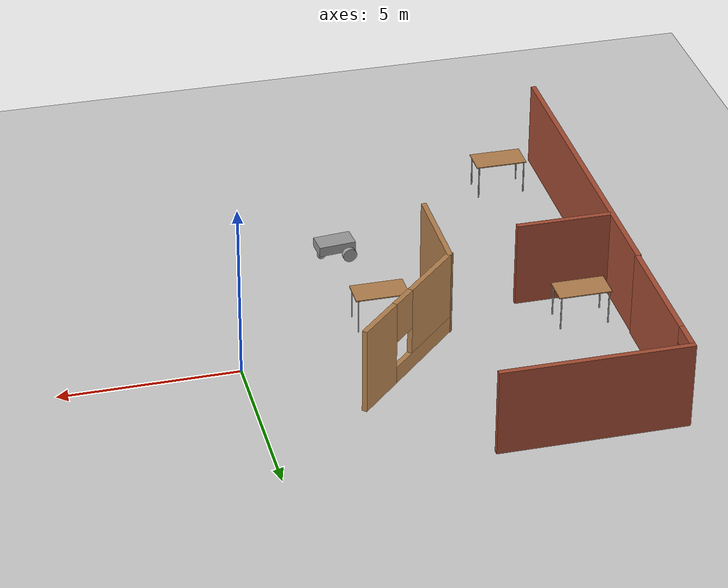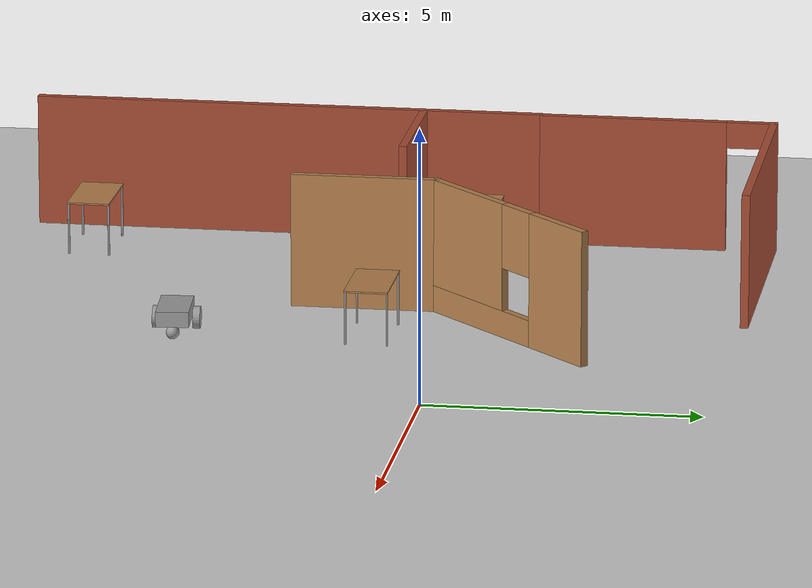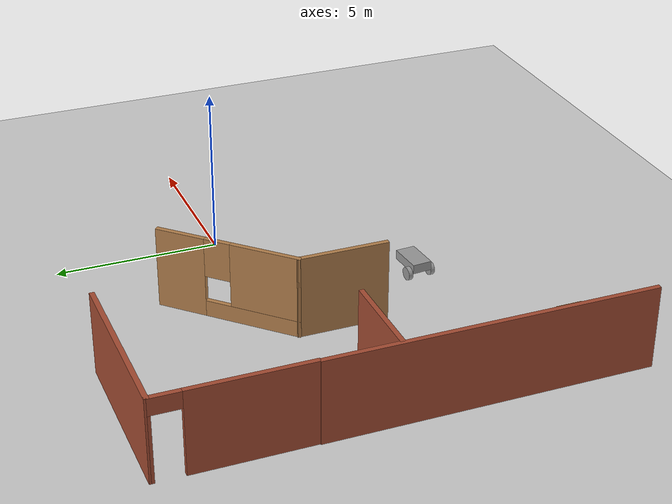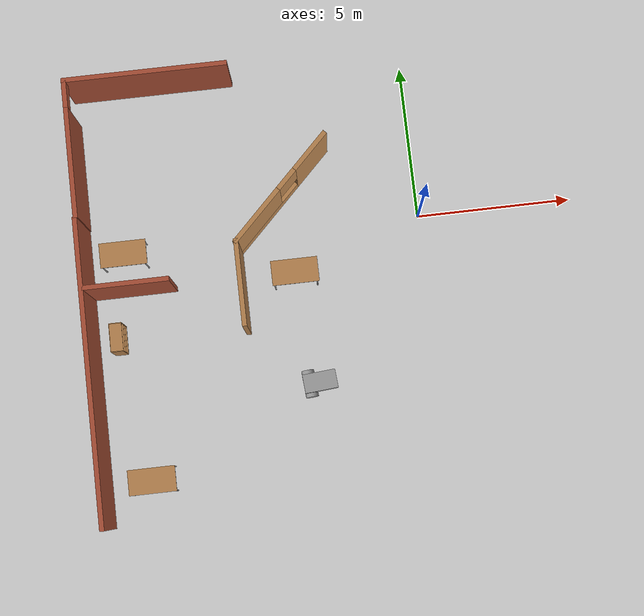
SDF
<sdf version="1.6">
 <world name="default">
  <model name="ground_plane">
   <static>1</static>
   <link name="link">
    <collision name="collision">
     <geometry><plane><normal>0 0 1</normal><size>100 100</size></plane></geometry>
     <surface>
      <contact><collide_bitmask>65535</collide_bitmask></contact>
      <friction><ode><mu>100</mu><mu2>50</mu2></ode></friction>
     </surface>
    </collision>
    <visual name="visual">
     <cast_shadows>0</cast_shadows>
     <geometry><plane><normal>0 0 1</normal><size>100 100</size></plane></geometry>
     <material>
      <script><uri>file://media/materials/scripts/gazebo.material</uri><name>Gazebo/Grey</name></script>
     </material>
    </visual>
   </link>
  </model>
  <model name="cart">
   <link name="link_0">
    <pose>0.000334 -0.065586 0.044669 0 -0 0</pose>
    <inertial>
     <mass>0.183478</mass>
     <inertia>
      <ixx>0.0186131</ixx>
      <ixy>0</ixy>
      <ixz>0</ixz>
      <iyy>0.00678768</iyy>
      <iyz>0</iyz>
      <izz>0.0228966</izz>
     </inertia>
    </inertial>
    <visual name="visual">
     <pose>0 0 0.2 0 -0 0</pose>
     <geometry><box><size>0.6017 1.06558 0.286166</size></box></geometry>
     <material>
      <lighting>1</lighting>
      <script><uri>file://media/materials/scripts/gazebo.material</uri><name>Gazebo/Grey</name></script>
      <shader type="pixel"><normal_map>__default__</normal_map></shader>
      <ambient>0.3 0.3 0.3 1</ambient>
      <diffuse>0.7 0.7 0.7 1</diffuse>
      <specular>0.01 0.01 0.01 1</specular>
      <emissive>0 0 0 1</emissive>
     </material>
    </visual>
    <collision name="collision">
     <pose>0 0 0.2 0 -0 0</pose>
     <geometry><box><size>0.6017 1.06558 0.286166</size></box></geometry>
     <surface>
      <friction>
       <ode><mu>1</mu><mu2>1</mu2><fdir1>0 0 0</fdir1><slip1>0</slip1><slip2>0</slip2></ode>
       <torsional>
        <coefficient>1</coefficient>
        <patch_radius>0</patch_radius>
        <surface_radius>0</surface_radius>
        <use_patch_radius>1</use_patch_radius>
        <ode><slip>0</slip></ode>
       </torsional>
      </friction>
      <bounce><restitution_coefficient>0</restitution_coefficient><threshold>1e+06</threshold></bounce>
      <contact>
       <collide_without_contact>0</collide_without_contact>
       <collide_without_contact_bitmask>1</collide_without_contact_bitmask>
       <collide_bitmask>1</collide_bitmask>
       <ode>
        <soft_cfm>0</soft_cfm>
        <soft_erp>0.2</soft_erp>
        <kp>1e+13</kp>
        <kd>1</kd>
        <max_vel>0.01</max_vel>
        <min_depth>0</min_depth>
       </ode>
       <bullet>
        <split_impulse>1</split_impulse>
        <split_impulse_penetration_threshold>-0.01</split_impulse_penetration_threshold>
        <soft_cfm>0</soft_cfm>
        <soft_erp>0.2</soft_erp>
        <kp>1e+13</kp>
        <kd>1</kd>
       </bullet>
      </contact>
     </surface>
    </collision>
   </link>
   <link name="link_1">
    <pose>-0.001 -0.462788 -0.129729 0 -0 0</pose>
    <inertial>
     <mass>1.886</mass>
     <inertia>
      <ixx>0.0115145</ixx>
      <ixy>0</ixy>
      <ixz>0</ixz>
      <iyy>0.0115145</iyy>
      <iyz>0</iyz>
      <izz>0.0115145</izz>
     </inertia>
     <pose>0 0 0.024704 0 -0 0</pose>
    </inertial>
    <visual name="visual">
     <pose>0 0 0.1 0 -0 0</pose>
     <geometry><sphere><radius>0.123544</radius></sphere></geometry>
     <material>
      <lighting>1</lighting>
      <script><uri>file://media/materials/scripts/gazebo.material</uri><name>Gazebo/Grey</name></script>
      <shader type="pixel"><normal_map>__default__</normal_map></shader>
      <ambient>0.3 0.3 0.3 1</ambient>
      <diffuse>0.7 0.7 0.7 1</diffuse>
      <specular>0.01 0.01 0.01 1</specular>
      <emissive>0 0 0 1</emissive>
     </material>
    </visual>
    <collision name="collision">
     <pose>0 0 0.1 0 -0 0</pose>
     <geometry><sphere><radius>0.123544</radius></sphere></geometry>
     <surface>
      <friction>
       <ode><mu>1</mu><mu2>1</mu2><fdir1>0 0 0</fdir1><slip1>0</slip1><slip2>0</slip2></ode>
       <torsional>
        <coefficient>1</coefficient>
        <patch_radius>0</patch_radius>
        <surface_radius>0</surface_radius>
        <use_patch_radius>1</use_patch_radius>
        <ode><slip>0</slip></ode>
       </torsional>
      </friction>
      <bounce><restitution_coefficient>0</restitution_coefficient><threshold>1e+06</threshold></bounce>
      <contact>
       <collide_without_contact>0</collide_without_contact>
       <collide_without_contact_bitmask>1</collide_without_contact_bitmask>
       <collide_bitmask>1</collide_bitmask>
       <ode>
        <soft_cfm>0</soft_cfm>
        <soft_erp>0.2</soft_erp>
        <kp>1e+13</kp>
        <kd>1</kd>
        <max_vel>0.01</max_vel>
        <min_depth>0</min_depth>
       </ode>
       <bullet>
        <split_impulse>1</split_impulse>
        <split_impulse_penetration_threshold>-0.01</split_impulse_penetration_threshold>
        <soft_cfm>0</soft_cfm>
        <soft_erp>0.2</soft_erp>
        <kp>1e+13</kp>
        <kd>1</kd>
       </bullet>
      </contact>
     </surface>
    </collision>
   </link>
   <link name="link_2">
    <pose>0.368986 0.26419 0.04253 3.14159 1.55999 3.14159</pose>
    <inertial>
     <mass>0.0216399</mass>
     <inertia>
      <ixx>0.000254029</ixx>
      <ixy>0</ixy>
      <ixz>0</ixz>
      <iyy>0.000254029</iyy>
      <iyz>0</iyz>
      <izz>0.000445951</izz>
     </inertia>
    </inertial>
    <visual name="visual">
     <geometry><cylinder><radius>0.203016</radius><length>0.131225</length></cylinder></geometry>
     <material>
      <lighting>1</lighting>
      <script><uri>file://media/materials/scripts/gazebo.material</uri><name>Gazebo/Grey</name></script>
      <shader type="pixel"><normal_map>__default__</normal_map></shader>
      <ambient>0.3 0.3 0.3 1</ambient>
      <diffuse>0.7 0.7 0.7 1</diffuse>
      <specular>0.01 0.01 0.01 1</specular>
      <emissive>0 0 0 1</emissive>
     </material>
    </visual>
    <collision name="collision">
     <geometry><cylinder><radius>0.203016</radius><length>0.131225</length></cylinder></geometry>
     <surface>
      <friction>
       <ode><mu>1</mu><mu2>1</mu2><fdir1>0 0 0</fdir1><slip1>0</slip1><slip2>0</slip2></ode>
       <torsional>
        <coefficient>1</coefficient>
        <patch_radius>0</patch_radius>
        <surface_radius>0</surface_radius>
        <use_patch_radius>1</use_patch_radius>
        <ode><slip>0</slip></ode>
       </torsional>
      </friction>
      <bounce><restitution_coefficient>0</restitution_coefficient><threshold>1e+06</threshold></bounce>
      <contact>
       <collide_without_contact>0</collide_without_contact>
       <collide_without_contact_bitmask>1</collide_without_contact_bitmask>
       <collide_bitmask>1</collide_bitmask>
       <ode>
        <soft_cfm>0</soft_cfm>
        <soft_erp>0.2</soft_erp>
        <kp>1e+13</kp>
        <kd>1</kd>
        <max_vel>0.01</max_vel>
        <min_depth>0</min_depth>
       </ode>
       <bullet>
        <split_impulse>1</split_impulse>
        <split_impulse_penetration_threshold>-0.01</split_impulse_penetration_threshold>
        <soft_cfm>0</soft_cfm>
        <soft_erp>0.2</soft_erp>
        <kp>1e+13</kp>
        <kd>1</kd>
       </bullet>
      </contact>
     </surface>
    </collision>
   </link>
   <link name="link_2_clone">
    <pose>-0.368319 0.26419 0.04253 3.14159 1.55999 3.14159</pose>
    <inertial>
     <mass>0.0216399</mass>
     <inertia>
      <ixx>0.000254029</ixx>
      <ixy>0</ixy>
      <ixz>0</ixz>
      <iyy>0.000254029</iyy>
      <iyz>0</iyz>
      <izz>0.000445951</izz>
     </inertia>
    </inertial>
    <visual name="visual">
     <geometry><cylinder><radius>0.203016</radius><length>0.131225</length></cylinder></geometry>
     <material>
      <lighting>1</lighting>
      <script><uri>file://media/materials/scripts/gazebo.material</uri><name>Gazebo/Grey</name></script>
      <shader type="pixel"><normal_map>__default__</normal_map></shader>
      <ambient>0.3 0.3 0.3 1</ambient>
      <diffuse>0.7 0.7 0.7 1</diffuse>
      <specular>0.01 0.01 0.01 1</specular>
      <emissive>0 0 0 1</emissive>
     </material>
    </visual>
    <collision name="collision">
     <geometry><cylinder><radius>0.203016</radius><length>0.131225</length></cylinder></geometry>
     <surface>
      <friction>
       <ode><mu>1</mu><mu2>1</mu2><fdir1>0 0 0</fdir1><slip1>0</slip1><slip2>0</slip2></ode>
       <torsional>
        <coefficient>1</coefficient>
        <patch_radius>0</patch_radius>
        <surface_radius>0</surface_radius>
        <use_patch_radius>1</use_patch_radius>
        <ode><slip>0</slip></ode>
       </torsional>
      </friction>
      <bounce><restitution_coefficient>0</restitution_coefficient><threshold>1e+06</threshold></bounce>
      <contact>
       <collide_without_contact>0</collide_without_contact>
       <collide_without_contact_bitmask>1</collide_without_contact_bitmask>
       <collide_bitmask>1</collide_bitmask>
       <ode>
        <soft_cfm>0</soft_cfm>
        <soft_erp>0.2</soft_erp>
        <kp>1e+13</kp>
        <kd>1</kd>
        <max_vel>0.01</max_vel>
        <min_depth>0</min_depth>
       </ode>
       <bullet>
        <split_impulse>1</split_impulse>
        <split_impulse_penetration_threshold>-0.01</split_impulse_penetration_threshold>
        <soft_cfm>0</soft_cfm>
        <soft_erp>0.2</soft_erp>
        <kp>1e+13</kp>
        <kd>1</kd>
       </bullet>
      </contact>
     </surface>
    </collision>
   </link>
   <joint name="link_0_JOINT_0" type="revolute">
    <parent>link_0</parent>
    <child>link_2</child>
    <axis>
     <xyz>0 0 1</xyz>
     <use_parent_model_frame>0</use_parent_model_frame>
     <limit>
      <lower>-1.79769e+308</lower>
      <upper>1.79769e+308</upper>
      <effort>-1</effort>
      <velocity>-1</velocity>
     </limit>
     <dynamics>
      <spring_reference>0</spring_reference>
      <spring_stiffness>0</spring_stiffness>
      <damping>0</damping>
     </dynamics>
    </axis>
    <physics>
     <ode><limit><cfm>0</cfm><erp>0.2</erp></limit><suspension><cfm>0</cfm><erp>0.2</erp></suspension></ode>
    </physics>
   </joint>
   <joint name="link_0_JOINT_1" type="revolute">
    <parent>link_0</parent>
    <child>link_2_clone</child>
    <axis>
     <xyz>0 0 1</xyz>
     <use_parent_model_frame>0</use_parent_model_frame>
     <limit>
      <lower>-1.79769e+308</lower>
      <upper>1.79769e+308</upper>
      <effort>-1</effort>
      <velocity>-1</velocity>
     </limit>
     <dynamics>
      <spring_reference>0</spring_reference>
      <spring_stiffness>0</spring_stiffness>
      <damping>0</damping>
     </dynamics>
    </axis>
    <physics>
     <ode><limit><cfm>0</cfm><erp>0.2</erp></limit><suspension><cfm>0</cfm><erp>0.2</erp></suspension></ode>
    </physics>
   </joint>
   <joint name="link_0_JOINT_2" type="ball">
    <parent>link_0</parent>
    <child>link_1</child>
    <physics>
     <ode><limit><cfm>0</cfm><erp>0.2</erp></limit><suspension><cfm>0</cfm><erp>0.2</erp></suspension></ode>
    </physics>
   </joint>
   <static>0</static>
   <pose>-3.83512 -5.04715 0.158309 0.010888 -2e-06 1.65228</pose>
  </model>
  <model name="bookshelf">
   <static>1</static>
   <link name="link">
    <inertial><mass>1</mass></inertial>
    <collision name="back">
     <pose>0 0.005 0.6 0 -0 0</pose>
     <geometry><box><size>0.9 0.01 1.2</size></box></geometry>
    </collision>
    <visual name="visual1">
     <pose>0 0.005 0.6 0 -0 0</pose>
     <geometry><box><size>0.9 0.01 1.2</size></box></geometry>
     <material>
      <script><uri>file://media/materials/scripts/gazebo.material</uri><name>Gazebo/Wood</name></script>
     </material>
    </visual>
    <collision name="left_side">
     <pose>0.45 -0.195 0.6 0 -0 0</pose>
     <geometry><box><size>0.02 0.4 1.2</size></box></geometry>
    </collision>
    <visual name="visual2">
     <pose>0.45 -0.195 0.6 0 -0 0</pose>
     <geometry><box><size>0.02 0.4 1.2</size></box></geometry>
     <material>
      <script><uri>file://media/materials/scripts/gazebo.material</uri><name>Gazebo/Wood</name></script>
     </material>
    </visual>
    <collision name="right_side">
     <pose>-0.45 -0.195 0.6 0 -0 0</pose>
     <geometry><box><size>0.02 0.4 1.2</size></box></geometry>
    </collision>
    <visual name="visual3">
     <pose>-0.45 -0.195 0.6 0 -0 0</pose>
     <geometry><box><size>0.02 0.4 1.2</size></box></geometry>
     <material>
      <script><uri>file://media/materials/scripts/gazebo.material</uri><name>Gazebo/Wood</name></script>
     </material>
    </visual>
    <collision name="bottom">
     <pose>0 -0.195 0.03 0 -0 0</pose>
     <geometry><box><size>0.88 0.4 0.06</size></box></geometry>
    </collision>
    <visual name="visual4">
     <pose>0 -0.195 0.03 0 -0 0</pose>
     <geometry><box><size>0.88 0.4 0.06</size></box></geometry>
     <material>
      <script><uri>file://media/materials/scripts/gazebo.material</uri><name>Gazebo/Wood</name></script>
     </material>
    </visual>
    <collision name="top">
     <pose>0 -0.195 1.19 0 -0 0</pose>
     <geometry><box><size>0.88 0.4 0.02</size></box></geometry>
    </collision>
    <visual name="visual5">
     <pose>0 -0.195 1.19 0 -0 0</pose>
     <geometry><box><size>0.88 0.4 0.02</size></box></geometry>
     <material>
      <script><uri>file://media/materials/scripts/gazebo.material</uri><name>Gazebo/Wood</name></script>
     </material>
    </visual>
    <collision name="low_shelf">
     <pose>0 -0.195 0.43 0 -0 0</pose>
     <geometry><box><size>0.88 0.4 0.02</size></box></geometry>
    </collision>
    <visual name="visual6">
     <pose>0 -0.195 0.43 0 -0 0</pose>
     <geometry><box><size>0.88 0.4 0.02</size></box></geometry>
     <material>
      <script><uri>file://media/materials/scripts/gazebo.material</uri><name>Gazebo/Wood</name></script>
     </material>
    </visual>
    <collision name="high_shelf">
     <pose>0 -0.195 0.8 0 -0 0</pose>
     <geometry><box><size>0.88 0.4 0.02</size></box></geometry>
    </collision>
    <visual name="visual7">
     <pose>0 -0.195 0.8 0 -0 0</pose>
     <geometry><box><size>0.88 0.4 0.02</size></box></geometry>
     <material>
      <script><uri>file://media/materials/scripts/gazebo.material</uri><name>Gazebo/Wood</name></script>
     </material>
    </visual>
   </link>
   <pose>-10.2076 -2.99005 0 0 -0 1.5663</pose>
  </model>
  <model name="table">
   <static>1</static>
   <link name="link">
    <collision name="surface">
     <pose>0 0 1 0 -0 0</pose>
     <geometry><box><size>1.5 0.8 0.03</size></box></geometry>
     <surface><friction><ode><mu>0.6</mu><mu2>0.6</mu2></ode></friction></surface>
    </collision>
    <visual name="visual1">
     <pose>0 0 1 0 -0 0</pose>
     <geometry><box><size>1.5 0.8 0.03</size></box></geometry>
     <material>
      <script><uri>file://media/materials/scripts/gazebo.material</uri><name>Gazebo/Wood</name></script>
     </material>
    </visual>
    <collision name="front_left_leg">
     <pose>0.68 0.38 0.5 0 -0 0</pose>
     <geometry><cylinder><radius>0.02</radius><length>1</length></cylinder></geometry>
    </collision>
    <visual name="front_left_leg">
     <pose>0.68 0.38 0.5 0 -0 0</pose>
     <geometry><cylinder><radius>0.02</radius><length>1</length></cylinder></geometry>
     <material>
      <script><uri>file://media/materials/scripts/gazebo.material</uri><name>Gazebo/Grey</name></script>
     </material>
    </visual>
    <collision name="front_right_leg">
     <pose>0.68 -0.38 0.5 0 -0 0</pose>
     <geometry><cylinder><radius>0.02</radius><length>1</length></cylinder></geometry>
    </collision>
    <visual name="front_right_leg">
     <pose>0.68 -0.38 0.5 0 -0 0</pose>
     <geometry><cylinder><radius>0.02</radius><length>1</length></cylinder></geometry>
     <material>
      <script><uri>file://media/materials/scripts/gazebo.material</uri><name>Gazebo/Grey</name></script>
     </material>
    </visual>
    <collision name="back_right_leg">
     <pose>-0.68 -0.38 0.5 0 -0 0</pose>
     <geometry><cylinder><radius>0.02</radius><length>1</length></cylinder></geometry>
    </collision>
    <visual name="back_right_leg">
     <pose>-0.68 -0.38 0.5 0 -0 0</pose>
     <geometry><cylinder><radius>0.02</radius><length>1</length></cylinder></geometry>
     <material>
      <script><uri>file://media/materials/scripts/gazebo.material</uri><name>Gazebo/Grey</name></script>
     </material>
    </visual>
    <collision name="back_left_leg">
     <pose>-0.68 0.38 0.5 0 -0 0</pose>
     <geometry><cylinder><radius>0.02</radius><length>1</length></cylinder></geometry>
    </collision>
    <visual name="back_left_leg">
     <pose>-0.68 0.38 0.5 0 -0 0</pose>
     <geometry><cylinder><radius>0.02</radius><length>1</length></cylinder></geometry>
     <material>
      <script><uri>file://media/materials/scripts/gazebo.material</uri><name>Gazebo/Grey</name></script>
     </material>
    </visual>
   </link>
   <pose>-9.32836 -7.57545 0 0 -0 0</pose>
  </model>
  <model name="office">
   <link name="Wall_18">
    <pose>-10.0712 -1.17835 0 0 -0 3.14159</pose>
    <inertial>
     <inertia><ixx>0</ixx><ixy>0</ixy><ixz>0</ixz><iyy>0</iyy><iyz>0</iyz><izz>0</izz></inertia>
     <mass>0</mass>
    </inertial>
    <visual name="Wall_18_Visual_0">
     <pose>-0.488616 0 1.25 0 -0 0</pose>
     <geometry><box><size>2.70441 0.15 2.5</size></box></geometry>
     <material>
      <script><uri>file://media/materials/scripts/gazebo.material</uri><name>Gazebo/Bricks</name></script>
      <ambient>0.435 0.796 0.675 1</ambient>
      <shader type="pixel"><normal_map>__default__</normal_map></shader>
      <diffuse>1 1 1 1</diffuse>
      <specular>0.2 0.2 0.2 1</specular>
      <emissive>0 0 0 1</emissive>
     </material>
     <meta><layer>0</layer></meta>
    </visual>
    <collision name="Wall_18_Collision_0">
     <pose>-0.488616 0 1.25 0 -0 0</pose>
     <geometry><box><size>2.70441 0.15 2.5</size></box></geometry>
     <surface>
      <friction>
       <ode><mu>1</mu><mu2>1</mu2><fdir1>0 0 0</fdir1><slip1>0</slip1><slip2>0</slip2></ode>
       <torsional>
        <coefficient>1</coefficient>
        <patch_radius>0</patch_radius>
        <surface_radius>0</surface_radius>
        <use_patch_radius>1</use_patch_radius>
        <ode><slip>0</slip></ode>
       </torsional>
      </friction>
      <bounce><restitution_coefficient>0</restitution_coefficient><threshold>1e+06</threshold></bounce>
      <contact>
       <collide_without_contact>0</collide_without_contact>
       <collide_without_contact_bitmask>1</collide_without_contact_bitmask>
       <collide_bitmask>1</collide_bitmask>
       <ode>
        <soft_cfm>0</soft_cfm>
        <soft_erp>0.2</soft_erp>
        <kp>1e+13</kp>
        <kd>1</kd>
        <max_vel>0.01</max_vel>
        <min_depth>0</min_depth>
       </ode>
       <bullet>
        <split_impulse>1</split_impulse>
        <split_impulse_penetration_threshold>-0.01</split_impulse_penetration_threshold>
        <soft_cfm>0</soft_cfm>
        <soft_erp>0.2</soft_erp>
        <kp>1e+13</kp>
        <kd>1</kd>
       </bullet>
      </contact>
     </surface>
    </collision>
   </link>
   <link name="Wall_21">
    <pose>-4.52938 1.29817 0 0 0 -2.35619</pose>
    <visual name="Wall_21_Visual_3">
     <pose>-0.314868 0 1.9 0 -0 0</pose>
     <geometry><box><size>0.8 0.15 1.2</size></box></geometry>
     <material>
      <script><uri>file://media/materials/scripts/gazebo.material</uri><name>Gazebo/Wood</name></script>
      <ambient>0.435294 0.796078 0.67451 1</ambient>
      <shader type="pixel"/>
      <diffuse>1 1 1 1</diffuse>
      <specular>0.2 0.2 0.2 1</specular>
      <emissive>0 0 0 1</emissive>
     </material>
     <meta><layer>0</layer></meta>
    </visual>
    <visual name="Wall_21_Visual_2">
     <pose>1.16757 0 1.5 0 -0 0</pose>
     <geometry><box><size>2.16487 0.15 2</size></box></geometry>
     <material>
      <script><uri>file://media/materials/scripts/gazebo.material</uri><name>Gazebo/Wood</name></script>
      <ambient>0.435294 0.796078 0.67451 1</ambient>
      <shader type="pixel"/>
      <diffuse>1 1 1 1</diffuse>
      <specular>0.2 0.2 0.2 1</specular>
      <emissive>0 0 0 1</emissive>
     </material>
     <meta><layer>0</layer></meta>
    </visual>
    <visual name="Wall_21_Visual_1">
     <pose>0.767566 0 0.25 0 -0 0</pose>
     <geometry><box><size>2.96487 0.15 0.5</size></box></geometry>
     <material>
      <script><uri>file://media/materials/scripts/gazebo.material</uri><name>Gazebo/Wood</name></script>
      <ambient>0.435294 0.796078 0.67451 1</ambient>
      <shader type="pixel"/>
      <diffuse>1 1 1 1</diffuse>
      <specular>0.2 0.2 0.2 1</specular>
      <emissive>0 0 0 1</emissive>
     </material>
     <meta><layer>0</layer></meta>
    </visual>
    <visual name="Wall_21_Visual_0">
     <pose>-1.48243 0 1.25 0 -0 0</pose>
     <geometry><box><size>1.53513 0.15 2.5</size></box></geometry>
     <material>
      <script><uri>file://media/materials/scripts/gazebo.material</uri><name>Gazebo/Wood</name></script>
      <ambient>0.435294 0.796078 0.67451 1</ambient>
      <shader type="pixel"/>
      <diffuse>1 1 1 1</diffuse>
      <specular>0.2 0.2 0.2 1</specular>
      <emissive>0 0 0 1</emissive>
     </material>
     <meta><layer>0</layer></meta>
    </visual>
    <collision name="Wall_21_Collision_2">
     <pose>1.16757 0 1.5 0 -0 0</pose>
     <geometry><box><size>2.16487 0.15 2</size></box></geometry>
     <surface>
      <friction>
       <ode><mu>1</mu><mu2>1</mu2><fdir1>0 0 0</fdir1><slip1>0</slip1><slip2>0</slip2></ode>
       <torsional>
        <coefficient>1</coefficient>
        <patch_radius>0</patch_radius>
        <surface_radius>0</surface_radius>
        <use_patch_radius>1</use_patch_radius>
        <ode><slip>0</slip></ode>
       </torsional>
      </friction>
      <bounce><restitution_coefficient>0</restitution_coefficient><threshold>1e+06</threshold></bounce>
      <contact>
       <collide_without_contact>0</collide_without_contact>
       <collide_without_contact_bitmask>1</collide_without_contact_bitmask>
       <collide_bitmask>1</collide_bitmask>
       <ode>
        <soft_cfm>0</soft_cfm>
        <soft_erp>0.2</soft_erp>
        <kp>1e+13</kp>
        <kd>1</kd>
        <max_vel>0.01</max_vel>
        <min_depth>0</min_depth>
       </ode>
       <bullet>
        <split_impulse>1</split_impulse>
        <split_impulse_penetration_threshold>-0.01</split_impulse_penetration_threshold>
        <soft_cfm>0</soft_cfm>
        <soft_erp>0.2</soft_erp>
        <kp>1e+13</kp>
        <kd>1</kd>
       </bullet>
      </contact>
     </surface>
    </collision>
    <collision name="Wall_21_Collision_3">
     <pose>-0.314868 0 1.9 0 -0 0</pose>
     <geometry><box><size>0.8 0.15 1.2</size></box></geometry>
     <surface>
      <friction>
       <ode><mu>1</mu><mu2>1</mu2><fdir1>0 0 0</fdir1><slip1>0</slip1><slip2>0</slip2></ode>
       <torsional>
        <coefficient>1</coefficient>
        <patch_radius>0</patch_radius>
        <surface_radius>0</surface_radius>
        <use_patch_radius>1</use_patch_radius>
        <ode><slip>0</slip></ode>
       </torsional>
      </friction>
      <bounce><restitution_coefficient>0</restitution_coefficient><threshold>1e+06</threshold></bounce>
      <contact>
       <collide_without_contact>0</collide_without_contact>
       <collide_without_contact_bitmask>1</collide_without_contact_bitmask>
       <collide_bitmask>1</collide_bitmask>
       <ode>
        <soft_cfm>0</soft_cfm>
        <soft_erp>0.2</soft_erp>
        <kp>1e+13</kp>
        <kd>1</kd>
        <max_vel>0.01</max_vel>
        <min_depth>0</min_depth>
       </ode>
       <bullet>
        <split_impulse>1</split_impulse>
        <split_impulse_penetration_threshold>-0.01</split_impulse_penetration_threshold>
        <soft_cfm>0</soft_cfm>
        <soft_erp>0.2</soft_erp>
        <kp>1e+13</kp>
        <kd>1</kd>
       </bullet>
      </contact>
     </surface>
    </collision>
    <collision name="Wall_21_Collision_1">
     <pose>0.767566 0 0.25 0 -0 0</pose>
     <geometry><box><size>2.96487 0.15 0.5</size></box></geometry>
     <surface>
      <friction>
       <ode><mu>1</mu><mu2>1</mu2><fdir1>0 0 0</fdir1><slip1>0</slip1><slip2>0</slip2></ode>
       <torsional>
        <coefficient>1</coefficient>
        <patch_radius>0</patch_radius>
        <surface_radius>0</surface_radius>
        <use_patch_radius>1</use_patch_radius>
        <ode><slip>0</slip></ode>
       </torsional>
      </friction>
      <bounce><restitution_coefficient>0</restitution_coefficient><threshold>1e+06</threshold></bounce>
      <contact>
       <collide_without_contact>0</collide_without_contact>
       <collide_without_contact_bitmask>1</collide_without_contact_bitmask>
       <collide_bitmask>1</collide_bitmask>
       <ode>
        <soft_cfm>0</soft_cfm>
        <soft_erp>0.2</soft_erp>
        <kp>1e+13</kp>
        <kd>1</kd>
        <max_vel>0.01</max_vel>
        <min_depth>0</min_depth>
       </ode>
       <bullet>
        <split_impulse>1</split_impulse>
        <split_impulse_penetration_threshold>-0.01</split_impulse_penetration_threshold>
        <soft_cfm>0</soft_cfm>
        <soft_erp>0.2</soft_erp>
        <kp>1e+13</kp>
        <kd>1</kd>
       </bullet>
      </contact>
     </surface>
    </collision>
    <collision name="Wall_21_Collision_0">
     <pose>-1.48243 0 1.25 0 -0 0</pose>
     <geometry><box><size>1.53513 0.15 2.5</size></box></geometry>
     <surface>
      <friction>
       <ode><mu>1</mu><mu2>1</mu2><fdir1>0 0 0</fdir1><slip1>0</slip1><slip2>0</slip2></ode>
       <torsional>
        <coefficient>1</coefficient>
        <patch_radius>0</patch_radius>
        <surface_radius>0</surface_radius>
        <use_patch_radius>1</use_patch_radius>
        <ode><slip>0</slip></ode>
       </torsional>
      </friction>
      <bounce><restitution_coefficient>0</restitution_coefficient><threshold>1e+06</threshold></bounce>
      <contact>
       <collide_without_contact>0</collide_without_contact>
       <collide_without_contact_bitmask>1</collide_without_contact_bitmask>
       <collide_bitmask>1</collide_bitmask>
       <ode>
        <soft_cfm>0</soft_cfm>
        <soft_erp>0.2</soft_erp>
        <kp>1e+13</kp>
        <kd>1</kd>
        <max_vel>0.01</max_vel>
        <min_depth>0</min_depth>
       </ode>
       <bullet>
        <split_impulse>1</split_impulse>
        <split_impulse_penetration_threshold>-0.01</split_impulse_penetration_threshold>
        <soft_cfm>0</soft_cfm>
        <soft_erp>0.2</soft_erp>
        <kp>1e+13</kp>
        <kd>1</kd>
       </bullet>
      </contact>
     </surface>
    </collision>
   </link>
   <link name="Wall_22">
    <pose>-6.06734 -1.53979 0 0 0 -1.5708</pose>
    <visual name="Wall_22_Visual">
     <pose>0 0 1.25 0 -0 0</pose>
     <geometry><box><size>2.75 0.15 2.5</size></box></geometry>
     <material>
      <script><uri>file://media/materials/scripts/gazebo.material</uri><name>Gazebo/Wood</name></script>
      <ambient>0.435294 0.796078 0.67451 1</ambient>
      <shader type="pixel"/>
      <diffuse>1 1 1 1</diffuse>
      <specular>0.2 0.2 0.2 1</specular>
      <emissive>0 0 0 1</emissive>
     </material>
     <meta><layer>0</layer></meta>
    </visual>
    <collision name="Wall_22_Collision">
     <pose>0 0 1.25 0 -0 0</pose>
     <geometry><box><size>2.75 0.15 2.5</size></box></geometry>
     <surface>
      <friction>
       <ode><mu>1</mu><mu2>1</mu2><fdir1>0 0 0</fdir1><slip1>0</slip1><slip2>0</slip2></ode>
       <torsional>
        <coefficient>1</coefficient>
        <patch_radius>0</patch_radius>
        <surface_radius>0</surface_radius>
        <use_patch_radius>1</use_patch_radius>
        <ode><slip>0</slip></ode>
       </torsional>
      </friction>
      <bounce><restitution_coefficient>0</restitution_coefficient><threshold>1e+06</threshold></bounce>
      <contact>
       <collide_without_contact>0</collide_without_contact>
       <collide_without_contact_bitmask>1</collide_without_contact_bitmask>
       <collide_bitmask>1</collide_bitmask>
       <ode>
        <soft_cfm>0</soft_cfm>
        <soft_erp>0.2</soft_erp>
        <kp>1e+13</kp>
        <kd>1</kd>
        <max_vel>0.01</max_vel>
        <min_depth>0</min_depth>
       </ode>
       <bullet>
        <split_impulse>1</split_impulse>
        <split_impulse_penetration_threshold>-0.01</split_impulse_penetration_threshold>
        <soft_cfm>0</soft_cfm>
        <soft_erp>0.2</soft_erp>
        <kp>1e+13</kp>
        <kd>1</kd>
       </bullet>
      </contact>
     </surface>
    </collision>
   </link>
   <link name="Wall_5_clone">
    <pose>-10.9673 -3.76778 0 0 -0 1.5708</pose>
    <inertial>
     <inertia><ixx>0</ixx><ixy>0</ixy><ixz>0</ixz><iyy>0</iyy><iyz>0</iyz><izz>0</izz></inertia>
     <mass>0</mass>
    </inertial>
    <visual name="Wall_5_Visual">
     <pose>0 0 1.25 0 -0 0</pose>
     <geometry><box><size>9.67537 0.15 2.5</size></box></geometry>
     <material>
      <script><uri>file://media/materials/scripts/gazebo.material</uri><name>Gazebo/Bricks</name></script>
      <ambient>0.435294 0.796078 0.67451 1</ambient>
      <shader type="pixel"/>
      <diffuse>1 1 1 1</diffuse>
      <specular>0.2 0.2 0.2 1</specular>
      <emissive>0 0 0 1</emissive>
     </material>
     <meta><layer>0</layer></meta>
    </visual>
    <collision name="Wall_5_Collision">
     <pose>0 0 1.25 0 -0 0</pose>
     <geometry><box><size>9.67537 0.15 2.5</size></box></geometry>
     <surface>
      <friction>
       <ode><mu>1</mu><mu2>1</mu2><fdir1>0 0 0</fdir1><slip1>0</slip1><slip2>0</slip2></ode>
       <torsional>
        <coefficient>1</coefficient>
        <patch_radius>0</patch_radius>
        <surface_radius>0</surface_radius>
        <use_patch_radius>1</use_patch_radius>
        <ode><slip>0</slip></ode>
       </torsional>
      </friction>
      <bounce><restitution_coefficient>0</restitution_coefficient><threshold>1e+06</threshold></bounce>
      <contact>
       <collide_without_contact>0</collide_without_contact>
       <collide_without_contact_bitmask>1</collide_without_contact_bitmask>
       <collide_bitmask>1</collide_bitmask>
       <ode>
        <soft_cfm>0</soft_cfm>
        <soft_erp>0.2</soft_erp>
        <kp>1e+13</kp>
        <kd>1</kd>
        <max_vel>0.01</max_vel>
        <min_depth>0</min_depth>
       </ode>
       <bullet>
        <split_impulse>1</split_impulse>
        <split_impulse_penetration_threshold>-0.01</split_impulse_penetration_threshold>
        <soft_cfm>0</soft_cfm>
        <soft_erp>0.2</soft_erp>
        <kp>1e+13</kp>
        <kd>1</kd>
       </bullet>
      </contact>
     </surface>
    </collision>
   </link>
   <link name="Wall_7">
    <pose>-10.9373 3.2892 0 0 -0 1.5708</pose>
    <visual name="Wall_7_Visual_0">
     <pose>-0.480218 0 1.25 0 -0 0</pose>
     <geometry><box><size>3.53957 0.15 2.5</size></box></geometry>
     <material>
      <script><uri>file://media/materials/scripts/gazebo.material</uri><name>Gazebo/Bricks</name></script>
      <ambient>0.435294 0.796078 0.67451 1</ambient>
      <shader type="pixel"/>
      <diffuse>1 1 1 1</diffuse>
      <specular>0.2 0.2 0.2 1</specular>
      <emissive>0 0 0 1</emissive>
     </material>
     <meta><layer>0</layer></meta>
    </visual>
    <visual name="Wall_7_Visual_1">
     <pose>2.21978 0 1.25 0 -0 0</pose>
     <geometry><box><size>0.060435 0.15 2.5</size></box></geometry>
     <material>
      <script><uri>file://media/materials/scripts/gazebo.material</uri><name>Gazebo/Bricks</name></script>
      <ambient>0.435294 0.796078 0.67451 1</ambient>
      <shader type="pixel"/>
      <diffuse>1 1 1 1</diffuse>
      <specular>0.2 0.2 0.2 1</specular>
      <emissive>0 0 0 1</emissive>
     </material>
     <meta><layer>0</layer></meta>
    </visual>
    <visual name="Wall_7_Visual_2">
     <pose>1.73957 0 2.25 0 -0 0</pose>
     <geometry><box><size>0.9 0.15 0.5</size></box></geometry>
     <material>
      <script><uri>file://media/materials/scripts/gazebo.material</uri><name>Gazebo/Bricks</name></script>
      <ambient>0.435294 0.796078 0.67451 1</ambient>
      <shader type="pixel"/>
      <diffuse>1 1 1 1</diffuse>
      <specular>0.2 0.2 0.2 1</specular>
      <emissive>0 0 0 1</emissive>
     </material>
     <meta><layer>0</layer></meta>
    </visual>
    <collision name="Wall_7_Collision_0">
     <pose>-0.480218 0 1.25 0 -0 0</pose>
     <geometry><box><size>3.53957 0.15 2.5</size></box></geometry>
     <surface>
      <friction>
       <ode><mu>1</mu><mu2>1</mu2><fdir1>0 0 0</fdir1><slip1>0</slip1><slip2>0</slip2></ode>
       <torsional>
        <coefficient>1</coefficient>
        <patch_radius>0</patch_radius>
        <surface_radius>0</surface_radius>
        <use_patch_radius>1</use_patch_radius>
        <ode><slip>0</slip></ode>
       </torsional>
      </friction>
      <bounce><restitution_coefficient>0</restitution_coefficient><threshold>1e+06</threshold></bounce>
      <contact>
       <collide_without_contact>0</collide_without_contact>
       <collide_without_contact_bitmask>1</collide_without_contact_bitmask>
       <collide_bitmask>1</collide_bitmask>
       <ode>
        <soft_cfm>0</soft_cfm>
        <soft_erp>0.2</soft_erp>
        <kp>1e+13</kp>
        <kd>1</kd>
        <max_vel>0.01</max_vel>
        <min_depth>0</min_depth>
       </ode>
       <bullet>
        <split_impulse>1</split_impulse>
        <split_impulse_penetration_threshold>-0.01</split_impulse_penetration_threshold>
        <soft_cfm>0</soft_cfm>
        <soft_erp>0.2</soft_erp>
        <kp>1e+13</kp>
        <kd>1</kd>
       </bullet>
      </contact>
     </surface>
    </collision>
    <collision name="Wall_7_Collision_1">
     <pose>2.21978 0 1.25 0 -0 0</pose>
     <geometry><box><size>0.060435 0.15 2.5</size></box></geometry>
     <surface>
      <friction>
       <ode><mu>1</mu><mu2>1</mu2><fdir1>0 0 0</fdir1><slip1>0</slip1><slip2>0</slip2></ode>
       <torsional>
        <coefficient>1</coefficient>
        <patch_radius>0</patch_radius>
        <surface_radius>0</surface_radius>
        <use_patch_radius>1</use_patch_radius>
        <ode><slip>0</slip></ode>
       </torsional>
      </friction>
      <bounce><restitution_coefficient>0</restitution_coefficient><threshold>1e+06</threshold></bounce>
      <contact>
       <collide_without_contact>0</collide_without_contact>
       <collide_without_contact_bitmask>1</collide_without_contact_bitmask>
       <collide_bitmask>1</collide_bitmask>
       <ode>
        <soft_cfm>0</soft_cfm>
        <soft_erp>0.2</soft_erp>
        <kp>1e+13</kp>
        <kd>1</kd>
        <max_vel>0.01</max_vel>
        <min_depth>0</min_depth>
       </ode>
       <bullet>
        <split_impulse>1</split_impulse>
        <split_impulse_penetration_threshold>-0.01</split_impulse_penetration_threshold>
        <soft_cfm>0</soft_cfm>
        <soft_erp>0.2</soft_erp>
        <kp>1e+13</kp>
        <kd>1</kd>
       </bullet>
      </contact>
     </surface>
    </collision>
    <collision name="Wall_7_Collision_2">
     <pose>1.73957 0 2.25 0 -0 0</pose>
     <geometry><box><size>0.9 0.15 0.5</size></box></geometry>
     <surface>
      <friction>
       <ode><mu>1</mu><mu2>1</mu2><fdir1>0 0 0</fdir1><slip1>0</slip1><slip2>0</slip2></ode>
       <torsional>
        <coefficient>1</coefficient>
        <patch_radius>0</patch_radius>
        <surface_radius>0</surface_radius>
        <use_patch_radius>1</use_patch_radius>
        <ode><slip>0</slip></ode>
       </torsional>
      </friction>
      <bounce><restitution_coefficient>0</restitution_coefficient><threshold>1e+06</threshold></bounce>
      <contact>
       <collide_without_contact>0</collide_without_contact>
       <collide_without_contact_bitmask>1</collide_without_contact_bitmask>
       <collide_bitmask>1</collide_bitmask>
       <ode>
        <soft_cfm>0</soft_cfm>
        <soft_erp>0.2</soft_erp>
        <kp>1e+13</kp>
        <kd>1</kd>
        <max_vel>0.01</max_vel>
        <min_depth>0</min_depth>
       </ode>
       <bullet>
        <split_impulse>1</split_impulse>
        <split_impulse_penetration_threshold>-0.01</split_impulse_penetration_threshold>
        <soft_cfm>0</soft_cfm>
        <soft_erp>0.2</soft_erp>
        <kp>1e+13</kp>
        <kd>1</kd>
       </bullet>
      </contact>
     </surface>
    </collision>
   </link>
   <link name="Wall_8">
    <pose>-8.3873 5.4642 0 0 -0 0</pose>
    <visual name="Wall_8_Visual">
     <pose>0 0 1.25 0 -0 0</pose>
     <geometry><box><size>5.25 0.15 2.5</size></box></geometry>
     <material>
      <script><uri>file://media/materials/scripts/gazebo.material</uri><name>Gazebo/Bricks</name></script>
      <ambient>0.435294 0.796078 0.67451 1</ambient>
      <shader type="pixel"/>
      <diffuse>1 1 1 1</diffuse>
      <specular>0.2 0.2 0.2 1</specular>
      <emissive>0 0 0 1</emissive>
     </material>
     <meta><layer>0</layer></meta>
    </visual>
    <collision name="Wall_8_Collision">
     <pose>0 0 1.25 0 -0 0</pose>
     <geometry><box><size>5.25 0.15 2.5</size></box></geometry>
     <surface>
      <friction>
       <ode><mu>1</mu><mu2>1</mu2><fdir1>0 0 0</fdir1><slip1>0</slip1><slip2>0</slip2></ode>
       <torsional>
        <coefficient>1</coefficient>
        <patch_radius>0</patch_radius>
        <surface_radius>0</surface_radius>
        <use_patch_radius>1</use_patch_radius>
        <ode><slip>0</slip></ode>
       </torsional>
      </friction>
      <bounce><restitution_coefficient>0</restitution_coefficient><threshold>1e+06</threshold></bounce>
      <contact>
       <collide_without_contact>0</collide_without_contact>
       <collide_without_contact_bitmask>1</collide_without_contact_bitmask>
       <collide_bitmask>1</collide_bitmask>
       <ode>
        <soft_cfm>0</soft_cfm>
        <soft_erp>0.2</soft_erp>
        <kp>1e+13</kp>
        <kd>1</kd>
        <max_vel>0.01</max_vel>
        <min_depth>0</min_depth>
       </ode>
       <bullet>
        <split_impulse>1</split_impulse>
        <split_impulse_penetration_threshold>-0.01</split_impulse_penetration_threshold>
        <soft_cfm>0</soft_cfm>
        <soft_erp>0.2</soft_erp>
        <kp>1e+13</kp>
        <kd>1</kd>
       </bullet>
      </contact>
     </surface>
    </collision>
   </link>
   <static>1</static>
   <pose>0.19118 -0.3324 0 0 -0 0</pose>
  </model>
  <model name="table_clone">
   <static>1</static>
   <link name="link">
    <collision name="surface">
     <pose>0 0 1 0 -0 0</pose>
     <geometry><box><size>1.5 0.8 0.03</size></box></geometry>
     <surface><friction><ode><mu>0.6</mu><mu2>0.6</mu2></ode></friction></surface>
    </collision>
    <visual name="visual1">
     <pose>0 0 1 0 -0 0</pose>
     <geometry><box><size>1.5 0.8 0.03</size></box></geometry>
     <material>
      <script><uri>file://media/materials/scripts/gazebo.material</uri><name>Gazebo/Wood</name></script>
     </material>
    </visual>
    <collision name="front_left_leg">
     <pose>0.68 0.38 0.5 0 -0 0</pose>
     <geometry><cylinder><radius>0.02</radius><length>1</length></cylinder></geometry>
    </collision>
    <visual name="front_left_leg">
     <pose>0.68 0.38 0.5 0 -0 0</pose>
     <geometry><cylinder><radius>0.02</radius><length>1</length></cylinder></geometry>
     <material>
      <script><uri>file://media/materials/scripts/gazebo.material</uri><name>Gazebo/Grey</name></script>
     </material>
    </visual>
    <collision name="front_right_leg">
     <pose>0.68 -0.38 0.5 0 -0 0</pose>
     <geometry><cylinder><radius>0.02</radius><length>1</length></cylinder></geometry>
    </collision>
    <visual name="front_right_leg">
     <pose>0.68 -0.38 0.5 0 -0 0</pose>
     <geometry><cylinder><radius>0.02</radius><length>1</length></cylinder></geometry>
     <material>
      <script><uri>file://media/materials/scripts/gazebo.material</uri><name>Gazebo/Grey</name></script>
     </material>
    </visual>
    <collision name="back_right_leg">
     <pose>-0.68 -0.38 0.5 0 -0 0</pose>
     <geometry><cylinder><radius>0.02</radius><length>1</length></cylinder></geometry>
    </collision>
    <visual name="back_right_leg">
     <pose>-0.68 -0.38 0.5 0 -0 0</pose>
     <geometry><cylinder><radius>0.02</radius><length>1</length></cylinder></geometry>
     <material>
      <script><uri>file://media/materials/scripts/gazebo.material</uri><name>Gazebo/Grey</name></script>
     </material>
    </visual>
    <collision name="back_left_leg">
     <pose>-0.68 0.38 0.5 0 -0 0</pose>
     <geometry><cylinder><radius>0.02</radius><length>1</length></cylinder></geometry>
    </collision>
    <visual name="back_left_leg">
     <pose>-0.68 0.38 0.5 0 -0 0</pose>
     <geometry><cylinder><radius>0.02</radius><length>1</length></cylinder></geometry>
     <material>
      <script><uri>file://media/materials/scripts/gazebo.material</uri><name>Gazebo/Grey</name></script>
     </material>
    </visual>
   </link>
   <pose>-9.57628 -0.315081 0 0 -0 0</pose>
  </model>
  <model name="table_clone_clone">
   <static>1</static>
   <link name="link">
    <collision name="surface">
     <pose>0 0 1 0 -0 0</pose>
     <geometry><box><size>1.5 0.8 0.03</size></box></geometry>
     <surface><friction><ode><mu>0.6</mu><mu2>0.6</mu2></ode></friction></surface>
    </collision>
    <visual name="visual1">
     <pose>0 0 1 0 -0 0</pose>
     <geometry><box><size>1.5 0.8 0.03</size></box></geometry>
     <material>
      <script><uri>file://media/materials/scripts/gazebo.material</uri><name>Gazebo/Wood</name></script>
     </material>
    </visual>
    <collision name="front_left_leg">
     <pose>0.68 0.38 0.5 0 -0 0</pose>
     <geometry><cylinder><radius>0.02</radius><length>1</length></cylinder></geometry>
    </collision>
    <visual name="front_left_leg">
     <pose>0.68 0.38 0.5 0 -0 0</pose>
     <geometry><cylinder><radius>0.02</radius><length>1</length></cylinder></geometry>
     <material>
      <script><uri>file://media/materials/scripts/gazebo.material</uri><name>Gazebo/Grey</name></script>
     </material>
    </visual>
    <collision name="front_right_leg">
     <pose>0.68 -0.38 0.5 0 -0 0</pose>
     <geometry><cylinder><radius>0.02</radius><length>1</length></cylinder></geometry>
    </collision>
    <visual name="front_right_leg">
     <pose>0.68 -0.38 0.5 0 -0 0</pose>
     <geometry><cylinder><radius>0.02</radius><length>1</length></cylinder></geometry>
     <material>
      <script><uri>file://media/materials/scripts/gazebo.material</uri><name>Gazebo/Grey</name></script>
     </material>
    </visual>
    <collision name="back_right_leg">
     <pose>-0.68 -0.38 0.5 0 -0 0</pose>
     <geometry><cylinder><radius>0.02</radius><length>1</length></cylinder></geometry>
    </collision>
    <visual name="back_right_leg">
     <pose>-0.68 -0.38 0.5 0 -0 0</pose>
     <geometry><cylinder><radius>0.02</radius><length>1</length></cylinder></geometry>
     <material>
      <script><uri>file://media/materials/scripts/gazebo.material</uri><name>Gazebo/Grey</name></script>
     </material>
    </visual>
    <collision name="back_left_leg">
     <pose>-0.68 0.38 0.5 0 -0 0</pose>
     <geometry><cylinder><radius>0.02</radius><length>1</length></cylinder></geometry>
    </collision>
    <visual name="back_left_leg">
     <pose>-0.68 0.38 0.5 0 -0 0</pose>
     <geometry><cylinder><radius>0.02</radius><length>1</length></cylinder></geometry>
     <material>
      <script><uri>file://media/materials/scripts/gazebo.material</uri><name>Gazebo/Grey</name></script>
     </material>
    </visual>
   </link>
   <pose>-4.17665 -1.49388 0 0 -0 0</pose>
  </model>
 </world>
</sdf>
